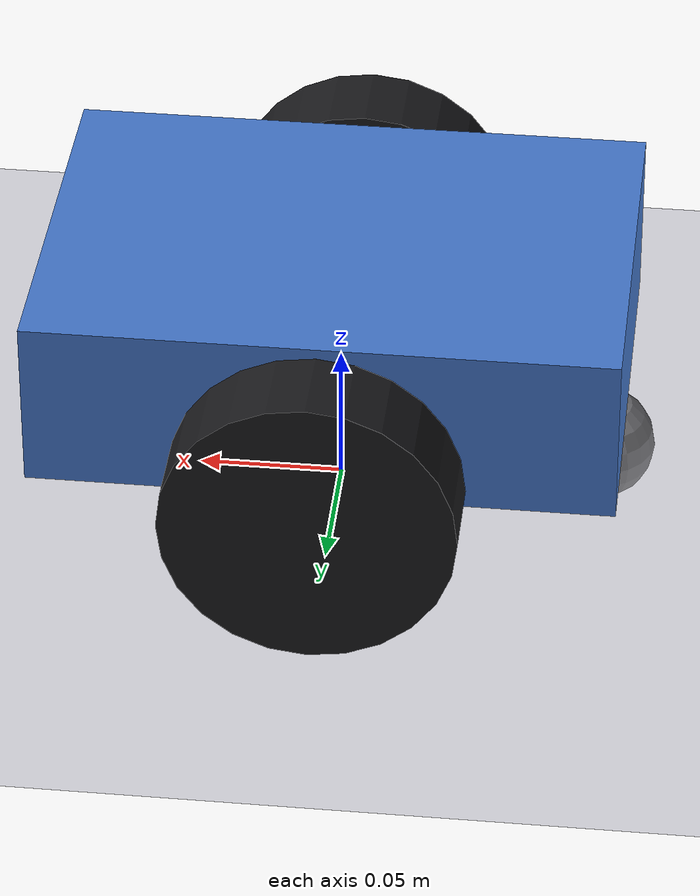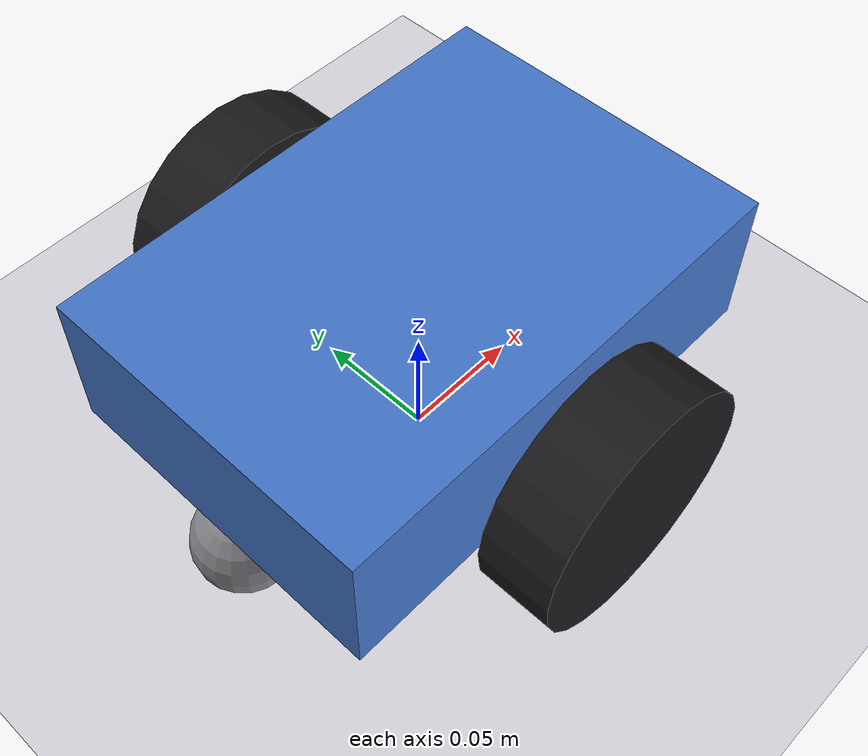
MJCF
<mujoco model="diffdrive_unit">
  <compiler angle="radian" coordinate="local"/>
  <option timestep="0.002" gravity="0 0 -9.81" integrator="implicitfast"/>

  <default>
    <geom condim="3" friction="2.0 0.05 0.001"
          solref="0.02 1" solimp="0.9 0.95 0.001"/>
  </default>

  <visual>
    <global offwidth="1280" offheight="720"/>
  </visual>

  <worldbody>
    <light pos="2 2 4" dir="0 0 -1" directional="true"/>
    <geom name="floor" type="plane" size="10 10 0.05"
          friction="2.0 0.05 0.001" rgba="0.85 0.85 0.88 1"/>

    <body name="chassis" pos="0 0 0.05">
      <freejoint name="root"/>
      <inertial pos="0 0 0.02" mass="1.5" diaginertia="0.01 0.02 0.025"/>
      <geom name="chassis_box" type="box" size="0.10 0.07 0.03" pos="0 0 0.02"
            mass="1.5" rgba="0.27 0.47 0.80 1" contype="1" conaffinity="0"/>

      <body name="wheel_l" pos="0 0.09 0">
        <joint name="wheel_l" type="hinge" axis="0 1 0" damping="0.002"/>
        <inertial pos="0 0 0" mass="0.15" diaginertia="0.00015 0.0003 0.00015"/>
        <geom name="wheel_l_geom" type="cylinder" size="0.05 0.015"
              euler="1.57079632679 0 0" mass="0.15" rgba="0.10 0.10 0.11 1"
              friction="2.5 0.05 0.001"/>
      </body>

      <body name="wheel_r" pos="0 -0.09 0">
        <joint name="wheel_r" type="hinge" axis="0 1 0" damping="0.002"/>
        <inertial pos="0 0 0" mass="0.15" diaginertia="0.00015 0.0003 0.00015"/>
        <geom name="wheel_r_geom" type="cylinder" size="0.05 0.015"
              euler="1.57079632679 0 0" mass="0.15" rgba="0.10 0.10 0.11 1"
              friction="2.5 0.05 0.001"/>
      </body>

      <body name="caster" pos="-0.09 0 -0.03">
        <joint name="caster_ball_joint" type="ball" damping="0.001"/>
        <geom name="caster_sphere" type="sphere" size="0.02" mass="0.05"
              friction="0.15 0.001 0.0001" rgba="0.50 0.50 0.52 1"/>
      </body>
    </body>

    <camera name="overview" pos="1.5 1.5 1.2" xyaxes="-0.7 0.7 0 -0.35 -0.35 0.87"/>
  </worldbody>

  <actuator>
    <velocity name="act_wheel_l" joint="wheel_l" kv="5"
              forcelimited="true" forcerange="-5 5" ctrlrange="-50 50"/>
    <velocity name="act_wheel_r" joint="wheel_r" kv="5"
              forcelimited="true" forcerange="-5 5" ctrlrange="-50 50"/>
  </actuator>
</mujoco>
